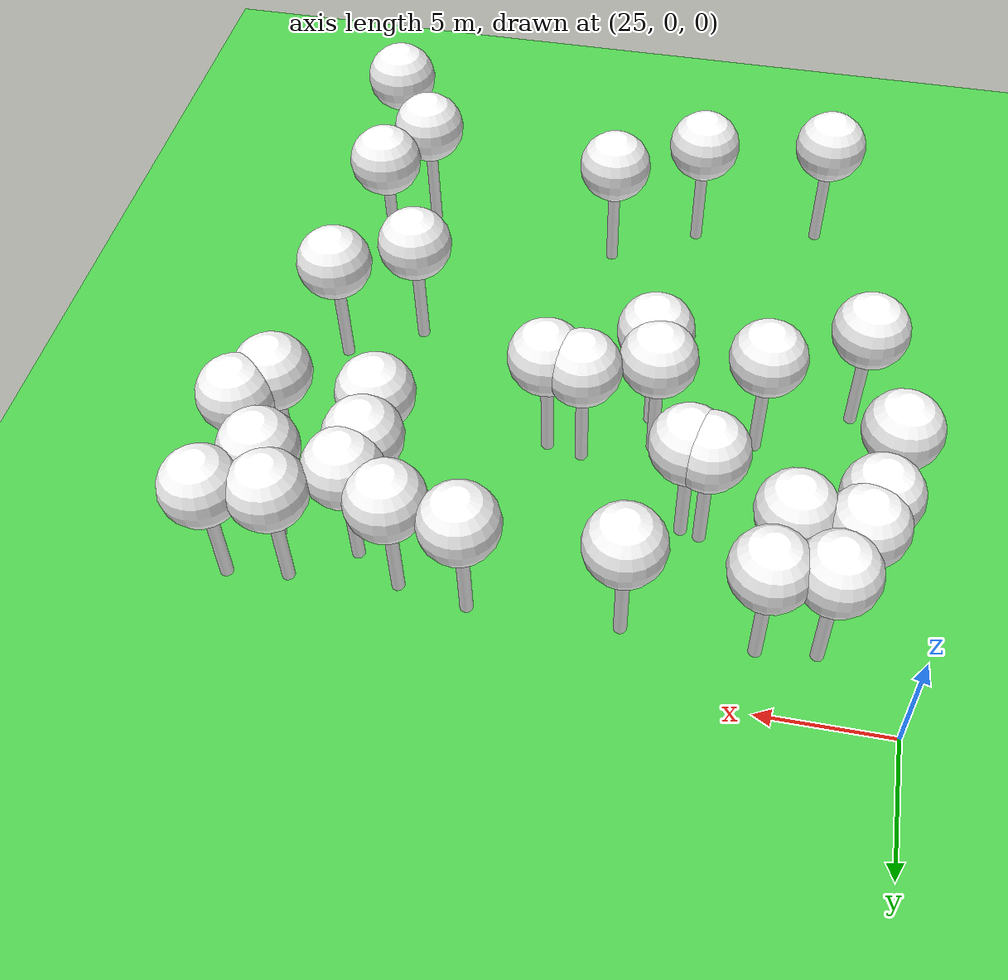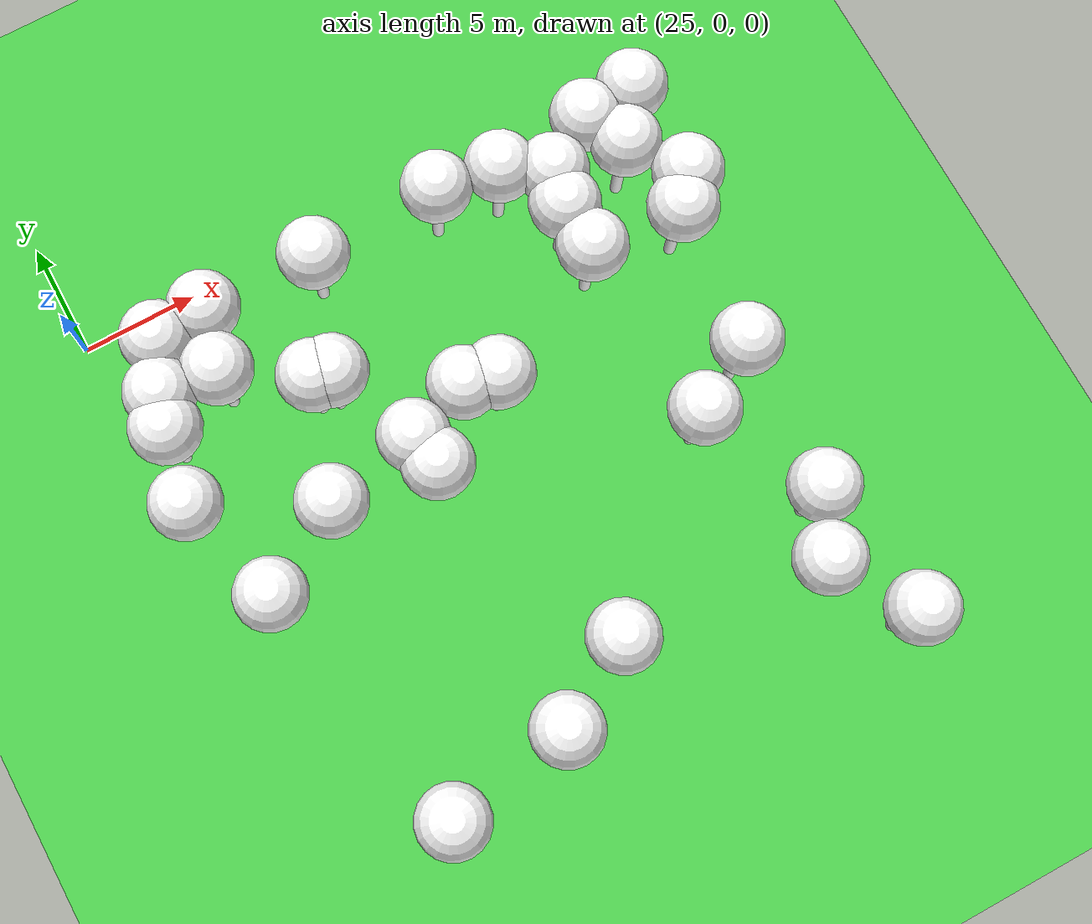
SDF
<sdf version="1.8">
 <world name="forest_world">
  <model name="tree_simple473">
   <static>1</static>
   <link name="link">
    <pose>0 0 0.1 0 -0 0</pose>
    <collision name="collision_trunk">
     <pose>0 0 2 0 -0 0</pose>
     <geometry><cylinder><radius>0.25</radius><length>4</length></cylinder></geometry>
    </collision>
    <collision name="collision_treetop">
     <pose>0 0 5.2 0 -0 0</pose>
     <geometry><sphere><radius>1.5</radius></sphere></geometry>
    </collision>
    <visual name="trunk_473">
     <pose>0 0 2 0 -0 0</pose>
     <geometry><cylinder><radius>0.25</radius><length>4</length></cylinder></geometry>
     <material>
      <ambient>0.5 0.5 0.5 1</ambient>
      <diffuse>1.0 1.0 1.0 1</diffuse>
      <specular>0.0 0.0 0.0 1</specular>
      <pbr>
       <metal>
        <albedo_map>file://textures/tree_simple_trunk.jpg</albedo_map>
        <metalness>0.0</metalness>
        <roughness>0.8</roughness>
       </metal>
      </pbr>
     </material>
    </visual>
    <visual name="treetop_473">
     <pose>0 0 5.2 0 -0 0</pose>
     <geometry><sphere><radius>1.5</radius></sphere></geometry>
     <material>
      <ambient>0.5 0.5 0.5 1</ambient>
      <diffuse>1.0 1.0 1.0 1</diffuse>
      <specular>0.0 0.0 0.0 1</specular>
      <pbr>
       <metal>
        <albedo_map>file://textures/tree_simple_treetop.jpg</albedo_map>
        <metalness>0.0</metalness>
        <roughness>0.9</roughness>
       </metal>
      </pbr>
     </material>
    </visual>
   </link>
   <pose>35.3600050295 -12.4568326028 0 0 -0 0</pose>
  </model>
  <model name="tree_simple468">
   <static>1</static>
   <link name="link">
    <pose>0 0 0.1 0 -0 0</pose>
    <collision name="collision_trunk">
     <pose>0 0 2 0 -0 0</pose>
     <geometry><cylinder><radius>0.25</radius><length>4</length></cylinder></geometry>
    </collision>
    <collision name="collision_treetop">
     <pose>0 0 5.2 0 -0 0</pose>
     <geometry><sphere><radius>1.5</radius></sphere></geometry>
    </collision>
    <visual name="trunk_468">
     <pose>0 0 2 0 -0 0</pose>
     <geometry><cylinder><radius>0.25</radius><length>4</length></cylinder></geometry>
     <material>
      <ambient>0.5 0.5 0.5 1</ambient>
      <diffuse>1.0 1.0 1.0 1</diffuse>
      <specular>0.0 0.0 0.0 1</specular>
      <pbr>
       <metal>
        <albedo_map>file://textures/tree_simple_trunk.jpg</albedo_map>
        <metalness>0.0</metalness>
        <roughness>0.8</roughness>
       </metal>
      </pbr>
     </material>
    </visual>
    <visual name="treetop_468">
     <pose>0 0 5.2 0 -0 0</pose>
     <geometry><sphere><radius>1.5</radius></sphere></geometry>
     <material>
      <ambient>0.5 0.5 0.5 1</ambient>
      <diffuse>1.0 1.0 1.0 1</diffuse>
      <specular>0.0 0.0 0.0 1</specular>
      <pbr>
       <metal>
        <albedo_map>file://textures/tree_simple_treetop.jpg</albedo_map>
        <metalness>0.0</metalness>
        <roughness>0.9</roughness>
       </metal>
      </pbr>
     </material>
    </visual>
   </link>
   <pose>33.4354348071 -7.20044037788 0 0 -0 0</pose>
  </model>
  <model name="tree_simple461">
   <static>1</static>
   <link name="link">
    <pose>0 0 0.1 0 -0 0</pose>
    <collision name="collision_trunk">
     <pose>0 0 2 0 -0 0</pose>
     <geometry><cylinder><radius>0.25</radius><length>4</length></cylinder></geometry>
    </collision>
    <collision name="collision_treetop">
     <pose>0 0 5.2 0 -0 0</pose>
     <geometry><sphere><radius>1.5</radius></sphere></geometry>
    </collision>
    <visual name="trunk_461">
     <pose>0 0 2 0 -0 0</pose>
     <geometry><cylinder><radius>0.25</radius><length>4</length></cylinder></geometry>
     <material>
      <ambient>0.5 0.5 0.5 1</ambient>
      <diffuse>1.0 1.0 1.0 1</diffuse>
      <specular>0.0 0.0 0.0 1</specular>
      <pbr>
       <metal>
        <albedo_map>file://textures/tree_simple_trunk.jpg</albedo_map>
        <metalness>0.0</metalness>
        <roughness>0.8</roughness>
       </metal>
      </pbr>
     </material>
    </visual>
    <visual name="treetop_461">
     <pose>0 0 5.2 0 -0 0</pose>
     <geometry><sphere><radius>1.5</radius></sphere></geometry>
     <material>
      <ambient>0.5 0.5 0.5 1</ambient>
      <diffuse>1.0 1.0 1.0 1</diffuse>
      <specular>0.0 0.0 0.0 1</specular>
      <pbr>
       <metal>
        <albedo_map>file://textures/tree_simple_treetop.jpg</albedo_map>
        <metalness>0.0</metalness>
        <roughness>0.9</roughness>
       </metal>
      </pbr>
     </material>
    </visual>
   </link>
   <pose>48.4583895912 -13.8275705943 0 0 -0 0</pose>
  </model>
  <model name="tree_simple429">
   <static>1</static>
   <link name="link">
    <pose>0 0 0.1 0 -0 0</pose>
    <collision name="collision_trunk">
     <pose>0 0 2 0 -0 0</pose>
     <geometry><cylinder><radius>0.25</radius><length>4</length></cylinder></geometry>
    </collision>
    <collision name="collision_treetop">
     <pose>0 0 5.2 0 -0 0</pose>
     <geometry><sphere><radius>1.5</radius></sphere></geometry>
    </collision>
    <visual name="trunk_429">
     <pose>0 0 2 0 -0 0</pose>
     <geometry><cylinder><radius>0.25</radius><length>4</length></cylinder></geometry>
     <material>
      <ambient>0.5 0.5 0.5 1</ambient>
      <diffuse>1.0 1.0 1.0 1</diffuse>
      <specular>0.0 0.0 0.0 1</specular>
      <pbr>
       <metal>
        <albedo_map>file://textures/tree_simple_trunk.jpg</albedo_map>
        <metalness>0.0</metalness>
        <roughness>0.8</roughness>
       </metal>
      </pbr>
     </material>
    </visual>
    <visual name="treetop_429">
     <pose>0 0 5.2 0 -0 0</pose>
     <geometry><sphere><radius>1.5</radius></sphere></geometry>
     <material>
      <ambient>0.5 0.5 0.5 1</ambient>
      <diffuse>1.0 1.0 1.0 1</diffuse>
      <specular>0.0 0.0 0.0 1</specular>
      <pbr>
       <metal>
        <albedo_map>file://textures/tree_simple_treetop.jpg</albedo_map>
        <metalness>0.0</metalness>
        <roughness>0.9</roughness>
       </metal>
      </pbr>
     </material>
    </visual>
   </link>
   <pose>29.4727075469 -24.7358283571 0 0 -0 0</pose>
  </model>
  <model name="tree_simple394">
   <static>1</static>
   <link name="link">
    <pose>0 0 0.1 0 -0 0</pose>
    <collision name="collision_trunk">
     <pose>0 0 2 0 -0 0</pose>
     <geometry><cylinder><radius>0.25</radius><length>4</length></cylinder></geometry>
    </collision>
    <collision name="collision_treetop">
     <pose>0 0 5.2 0 -0 0</pose>
     <geometry><sphere><radius>1.5</radius></sphere></geometry>
    </collision>
    <visual name="trunk_394">
     <pose>0 0 2 0 -0 0</pose>
     <geometry><cylinder><radius>0.25</radius><length>4</length></cylinder></geometry>
     <material>
      <ambient>0.5 0.5 0.5 1</ambient>
      <diffuse>1.0 1.0 1.0 1</diffuse>
      <specular>0.0 0.0 0.0 1</specular>
      <pbr>
       <metal>
        <albedo_map>file://textures/tree_simple_trunk.jpg</albedo_map>
        <metalness>0.0</metalness>
        <roughness>0.8</roughness>
       </metal>
      </pbr>
     </material>
    </visual>
    <visual name="treetop_394">
     <pose>0 0 5.2 0 -0 0</pose>
     <geometry><sphere><radius>1.5</radius></sphere></geometry>
     <material>
      <ambient>0.5 0.5 0.5 1</ambient>
      <diffuse>1.0 1.0 1.0 1</diffuse>
      <specular>0.0 0.0 0.0 1</specular>
      <pbr>
       <metal>
        <albedo_map>file://textures/tree_simple_treetop.jpg</albedo_map>
        <metalness>0.0</metalness>
        <roughness>0.9</roughness>
       </metal>
      </pbr>
     </material>
    </visual>
   </link>
   <pose>26.6658652991 -6.19294115589 0 0 -0 0</pose>
  </model>
  <model name="tree_simple391">
   <static>1</static>
   <link name="link">
    <pose>0 0 0.1 0 -0 0</pose>
    <collision name="collision_trunk">
     <pose>0 0 2 0 -0 0</pose>
     <geometry><cylinder><radius>0.25</radius><length>4</length></cylinder></geometry>
    </collision>
    <collision name="collision_treetop">
     <pose>0 0 5.2 0 -0 0</pose>
     <geometry><sphere><radius>1.5</radius></sphere></geometry>
    </collision>
    <visual name="trunk_391">
     <pose>0 0 2 0 -0 0</pose>
     <geometry><cylinder><radius>0.25</radius><length>4</length></cylinder></geometry>
     <material>
      <ambient>0.5 0.5 0.5 1</ambient>
      <diffuse>1.0 1.0 1.0 1</diffuse>
      <specular>0.0 0.0 0.0 1</specular>
      <pbr>
       <metal>
        <albedo_map>file://textures/tree_simple_trunk.jpg</albedo_map>
        <metalness>0.0</metalness>
        <roughness>0.8</roughness>
       </metal>
      </pbr>
     </material>
    </visual>
    <visual name="treetop_391">
     <pose>0 0 5.2 0 -0 0</pose>
     <geometry><sphere><radius>1.5</radius></sphere></geometry>
     <material>
      <ambient>0.5 0.5 0.5 1</ambient>
      <diffuse>1.0 1.0 1.0 1</diffuse>
      <specular>0.0 0.0 0.0 1</specular>
      <pbr>
       <metal>
        <albedo_map>file://textures/tree_simple_treetop.jpg</albedo_map>
        <metalness>0.0</metalness>
        <roughness>0.9</roughness>
       </metal>
      </pbr>
     </material>
    </visual>
   </link>
   <pose>35.0521422103 -11.0450283788 0 0 -0 0</pose>
  </model>
  <model name="tree_simple390">
   <static>1</static>
   <link name="link">
    <pose>0 0 0.1 0 -0 0</pose>
    <collision name="collision_trunk">
     <pose>0 0 2 0 -0 0</pose>
     <geometry><cylinder><radius>0.25</radius><length>4</length></cylinder></geometry>
    </collision>
    <collision name="collision_treetop">
     <pose>0 0 5.2 0 -0 0</pose>
     <geometry><sphere><radius>1.5</radius></sphere></geometry>
    </collision>
    <visual name="trunk_390">
     <pose>0 0 2 0 -0 0</pose>
     <geometry><cylinder><radius>0.25</radius><length>4</length></cylinder></geometry>
     <material>
      <ambient>0.5 0.5 0.5 1</ambient>
      <diffuse>1.0 1.0 1.0 1</diffuse>
      <specular>0.0 0.0 0.0 1</specular>
      <pbr>
       <metal>
        <albedo_map>file://textures/tree_simple_trunk.jpg</albedo_map>
        <metalness>0.0</metalness>
        <roughness>0.8</roughness>
       </metal>
      </pbr>
     </material>
    </visual>
    <visual name="treetop_390">
     <pose>0 0 5.2 0 -0 0</pose>
     <geometry><sphere><radius>1.5</radius></sphere></geometry>
     <material>
      <ambient>0.5 0.5 0.5 1</ambient>
      <diffuse>1.0 1.0 1.0 1</diffuse>
      <specular>0.0 0.0 0.0 1</specular>
      <pbr>
       <metal>
        <albedo_map>file://textures/tree_simple_treetop.jpg</albedo_map>
        <metalness>0.0</metalness>
        <roughness>0.9</roughness>
       </metal>
      </pbr>
     </material>
    </visual>
   </link>
   <pose>34.8279648661 -23.7978261523 0 0 -0 0</pose>
  </model>
  <model name="tree_simple385">
   <static>1</static>
   <link name="link">
    <pose>0 0 0.1 0 -0 0</pose>
    <collision name="collision_trunk">
     <pose>0 0 2 0 -0 0</pose>
     <geometry><cylinder><radius>0.25</radius><length>4</length></cylinder></geometry>
    </collision>
    <collision name="collision_treetop">
     <pose>0 0 5.2 0 -0 0</pose>
     <geometry><sphere><radius>1.5</radius></sphere></geometry>
    </collision>
    <visual name="trunk_385">
     <pose>0 0 2 0 -0 0</pose>
     <geometry><cylinder><radius>0.25</radius><length>4</length></cylinder></geometry>
     <material>
      <ambient>0.5 0.5 0.5 1</ambient>
      <diffuse>1.0 1.0 1.0 1</diffuse>
      <specular>0.0 0.0 0.0 1</specular>
      <pbr>
       <metal>
        <albedo_map>file://textures/tree_simple_trunk.jpg</albedo_map>
        <metalness>0.0</metalness>
        <roughness>0.8</roughness>
       </metal>
      </pbr>
     </material>
    </visual>
    <visual name="treetop_385">
     <pose>0 0 5.2 0 -0 0</pose>
     <geometry><sphere><radius>1.5</radius></sphere></geometry>
     <material>
      <ambient>0.5 0.5 0.5 1</ambient>
      <diffuse>1.0 1.0 1.0 1</diffuse>
      <specular>0.0 0.0 0.0 1</specular>
      <pbr>
       <metal>
        <albedo_map>file://textures/tree_simple_treetop.jpg</albedo_map>
        <metalness>0.0</metalness>
        <roughness>0.9</roughness>
       </metal>
      </pbr>
     </material>
    </visual>
   </link>
   <pose>32.6946046779 -7.01468529962 0 0 -0 0</pose>
  </model>
  <model name="tree_simple380">
   <static>1</static>
   <link name="link">
    <pose>0 0 0.1 0 -0 0</pose>
    <collision name="collision_trunk">
     <pose>0 0 2 0 -0 0</pose>
     <geometry><cylinder><radius>0.25</radius><length>4</length></cylinder></geometry>
    </collision>
    <collision name="collision_treetop">
     <pose>0 0 5.2 0 -0 0</pose>
     <geometry><sphere><radius>1.5</radius></sphere></geometry>
    </collision>
    <visual name="trunk_380">
     <pose>0 0 2 0 -0 0</pose>
     <geometry><cylinder><radius>0.25</radius><length>4</length></cylinder></geometry>
     <material>
      <ambient>0.5 0.5 0.5 1</ambient>
      <diffuse>1.0 1.0 1.0 1</diffuse>
      <specular>0.0 0.0 0.0 1</specular>
      <pbr>
       <metal>
        <albedo_map>file://textures/tree_simple_trunk.jpg</albedo_map>
        <metalness>0.0</metalness>
        <roughness>0.8</roughness>
       </metal>
      </pbr>
     </material>
    </visual>
    <visual name="treetop_380">
     <pose>0 0 5.2 0 -0 0</pose>
     <geometry><sphere><radius>1.5</radius></sphere></geometry>
     <material>
      <ambient>0.5 0.5 0.5 1</ambient>
      <diffuse>1.0 1.0 1.0 1</diffuse>
      <specular>0.0 0.0 0.0 1</specular>
      <pbr>
       <metal>
        <albedo_map>file://textures/tree_simple_treetop.jpg</albedo_map>
        <metalness>0.0</metalness>
        <roughness>0.9</roughness>
       </metal>
      </pbr>
     </material>
    </visual>
   </link>
   <pose>49.0222625073 -7.79616728684 0 0 -0 0</pose>
  </model>
  <model name="tree_simple374">
   <static>1</static>
   <link name="link">
    <pose>0 0 0.1 0 -0 0</pose>
    <collision name="collision_trunk">
     <pose>0 0 2 0 -0 0</pose>
     <geometry><cylinder><radius>0.25</radius><length>4</length></cylinder></geometry>
    </collision>
    <collision name="collision_treetop">
     <pose>0 0 5.2 0 -0 0</pose>
     <geometry><sphere><radius>1.5</radius></sphere></geometry>
    </collision>
    <visual name="trunk_374">
     <pose>0 0 2 0 -0 0</pose>
     <geometry><cylinder><radius>0.25</radius><length>4</length></cylinder></geometry>
     <material>
      <ambient>0.5 0.5 0.5 1</ambient>
      <diffuse>1.0 1.0 1.0 1</diffuse>
      <specular>0.0 0.0 0.0 1</specular>
      <pbr>
       <metal>
        <albedo_map>file://textures/tree_simple_trunk.jpg</albedo_map>
        <metalness>0.0</metalness>
        <roughness>0.8</roughness>
       </metal>
      </pbr>
     </material>
    </visual>
    <visual name="treetop_374">
     <pose>0 0 5.2 0 -0 0</pose>
     <geometry><sphere><radius>1.5</radius></sphere></geometry>
     <material>
      <ambient>0.5 0.5 0.5 1</ambient>
      <diffuse>1.0 1.0 1.0 1</diffuse>
      <specular>0.0 0.0 0.0 1</specular>
      <pbr>
       <metal>
        <albedo_map>file://textures/tree_simple_treetop.jpg</albedo_map>
        <metalness>0.0</metalness>
        <roughness>0.9</roughness>
       </metal>
      </pbr>
     </material>
    </visual>
   </link>
   <pose>45.5880490305 -15.4743351493 0 0 -0 0</pose>
  </model>
  <model name="tree_simple352">
   <static>1</static>
   <link name="link">
    <pose>0 0 0.1 0 -0 0</pose>
    <collision name="collision_trunk">
     <pose>0 0 2 0 -0 0</pose>
     <geometry><cylinder><radius>0.25</radius><length>4</length></cylinder></geometry>
    </collision>
    <collision name="collision_treetop">
     <pose>0 0 5.2 0 -0 0</pose>
     <geometry><sphere><radius>1.5</radius></sphere></geometry>
    </collision>
    <visual name="trunk_352">
     <pose>0 0 2 0 -0 0</pose>
     <geometry><cylinder><radius>0.25</radius><length>4</length></cylinder></geometry>
     <material>
      <ambient>0.5 0.5 0.5 1</ambient>
      <diffuse>1.0 1.0 1.0 1</diffuse>
      <specular>0.0 0.0 0.0 1</specular>
      <pbr>
       <metal>
        <albedo_map>file://textures/tree_simple_trunk.jpg</albedo_map>
        <metalness>0.0</metalness>
        <roughness>0.8</roughness>
       </metal>
      </pbr>
     </material>
    </visual>
    <visual name="treetop_352">
     <pose>0 0 5.2 0 -0 0</pose>
     <geometry><sphere><radius>1.5</radius></sphere></geometry>
     <material>
      <ambient>0.5 0.5 0.5 1</ambient>
      <diffuse>1.0 1.0 1.0 1</diffuse>
      <specular>0.0 0.0 0.0 1</specular>
      <pbr>
       <metal>
        <albedo_map>file://textures/tree_simple_treetop.jpg</albedo_map>
        <metalness>0.0</metalness>
        <roughness>0.9</roughness>
       </metal>
      </pbr>
     </material>
    </visual>
   </link>
   <pose>37.7714253308 -10.085576638 0 0 -0 0</pose>
  </model>
  <model name="tree_simple301">
   <static>1</static>
   <link name="link">
    <pose>0 0 0.1 0 -0 0</pose>
    <collision name="collision_trunk">
     <pose>0 0 2 0 -0 0</pose>
     <geometry><cylinder><radius>0.25</radius><length>4</length></cylinder></geometry>
    </collision>
    <collision name="collision_treetop">
     <pose>0 0 5.2 0 -0 0</pose>
     <geometry><sphere><radius>1.5</radius></sphere></geometry>
    </collision>
    <visual name="trunk_301">
     <pose>0 0 2 0 -0 0</pose>
     <geometry><cylinder><radius>0.25</radius><length>4</length></cylinder></geometry>
     <material>
      <ambient>0.5 0.5 0.5 1</ambient>
      <diffuse>1.0 1.0 1.0 1</diffuse>
      <specular>0.0 0.0 0.0 1</specular>
      <pbr>
       <metal>
        <albedo_map>file://textures/tree_simple_trunk.jpg</albedo_map>
        <metalness>0.0</metalness>
        <roughness>0.8</roughness>
       </metal>
      </pbr>
     </material>
    </visual>
    <visual name="treetop_301">
     <pose>0 0 5.2 0 -0 0</pose>
     <geometry><sphere><radius>1.5</radius></sphere></geometry>
     <material>
      <ambient>0.5 0.5 0.5 1</ambient>
      <diffuse>1.0 1.0 1.0 1</diffuse>
      <specular>0.0 0.0 0.0 1</specular>
      <pbr>
       <metal>
        <albedo_map>file://textures/tree_simple_treetop.jpg</albedo_map>
        <metalness>0.0</metalness>
        <roughness>0.9</roughness>
       </metal>
      </pbr>
     </material>
    </visual>
   </link>
   <pose>27.965012063 -2.69695305694 0 0 -0 0</pose>
  </model>
  <model name="tree_simple290">
   <static>1</static>
   <link name="link">
    <pose>0 0 0.1 0 -0 0</pose>
    <collision name="collision_trunk">
     <pose>0 0 2 0 -0 0</pose>
     <geometry><cylinder><radius>0.25</radius><length>4</length></cylinder></geometry>
    </collision>
    <collision name="collision_treetop">
     <pose>0 0 5.2 0 -0 0</pose>
     <geometry><sphere><radius>1.5</radius></sphere></geometry>
    </collision>
    <visual name="trunk_290">
     <pose>0 0 2 0 -0 0</pose>
     <geometry><cylinder><radius>0.25</radius><length>4</length></cylinder></geometry>
     <material>
      <ambient>0.5 0.5 0.5 1</ambient>
      <diffuse>1.0 1.0 1.0 1</diffuse>
      <specular>0.0 0.0 0.0 1</specular>
      <pbr>
       <metal>
        <albedo_map>file://textures/tree_simple_trunk.jpg</albedo_map>
        <metalness>0.0</metalness>
        <roughness>0.8</roughness>
       </metal>
      </pbr>
     </material>
    </visual>
    <visual name="treetop_290">
     <pose>0 0 5.2 0 -0 0</pose>
     <geometry><sphere><radius>1.5</radius></sphere></geometry>
     <material>
      <ambient>0.5 0.5 0.5 1</ambient>
      <diffuse>1.0 1.0 1.0 1</diffuse>
      <specular>0.0 0.0 0.0 1</specular>
      <pbr>
       <metal>
        <albedo_map>file://textures/tree_simple_treetop.jpg</albedo_map>
        <metalness>0.0</metalness>
        <roughness>0.9</roughness>
       </metal>
      </pbr>
     </material>
    </visual>
   </link>
   <pose>27.3398552582 -13.9618363734 0 0 -0 0</pose>
  </model>
  <model name="tree_simple288">
   <static>1</static>
   <link name="link">
    <pose>0 0 0.1 0 -0 0</pose>
    <collision name="collision_trunk">
     <pose>0 0 2 0 -0 0</pose>
     <geometry><cylinder><radius>0.25</radius><length>4</length></cylinder></geometry>
    </collision>
    <collision name="collision_treetop">
     <pose>0 0 5.2 0 -0 0</pose>
     <geometry><sphere><radius>1.5</radius></sphere></geometry>
    </collision>
    <visual name="trunk_288">
     <pose>0 0 2 0 -0 0</pose>
     <geometry><cylinder><radius>0.25</radius><length>4</length></cylinder></geometry>
     <material>
      <ambient>0.5 0.5 0.5 1</ambient>
      <diffuse>1.0 1.0 1.0 1</diffuse>
      <specular>0.0 0.0 0.0 1</specular>
      <pbr>
       <metal>
        <albedo_map>file://textures/tree_simple_trunk.jpg</albedo_map>
        <metalness>0.0</metalness>
        <roughness>0.8</roughness>
       </metal>
      </pbr>
     </material>
    </visual>
    <visual name="treetop_288">
     <pose>0 0 5.2 0 -0 0</pose>
     <geometry><sphere><radius>1.5</radius></sphere></geometry>
     <material>
      <ambient>0.5 0.5 0.5 1</ambient>
      <diffuse>1.0 1.0 1.0 1</diffuse>
      <specular>0.0 0.0 0.0 1</specular>
      <pbr>
       <metal>
        <albedo_map>file://textures/tree_simple_treetop.jpg</albedo_map>
        <metalness>0.0</metalness>
        <roughness>0.9</roughness>
       </metal>
      </pbr>
     </material>
    </visual>
   </link>
   <pose>27.0972467775 -4.81040951666 0 0 -0 0</pose>
  </model>
  <model name="tree_simple278">
   <static>1</static>
   <link name="link">
    <pose>0 0 0.1 0 -0 0</pose>
    <collision name="collision_trunk">
     <pose>0 0 2 0 -0 0</pose>
     <geometry><cylinder><radius>0.25</radius><length>4</length></cylinder></geometry>
    </collision>
    <collision name="collision_treetop">
     <pose>0 0 5.2 0 -0 0</pose>
     <geometry><sphere><radius>1.5</radius></sphere></geometry>
    </collision>
    <visual name="trunk_278">
     <pose>0 0 2 0 -0 0</pose>
     <geometry><cylinder><radius>0.25</radius><length>4</length></cylinder></geometry>
     <material>
      <ambient>0.5 0.5 0.5 1</ambient>
      <diffuse>1.0 1.0 1.0 1</diffuse>
      <specular>0.0 0.0 0.0 1</specular>
      <pbr>
       <metal>
        <albedo_map>file://textures/tree_simple_trunk.jpg</albedo_map>
        <metalness>0.0</metalness>
        <roughness>0.8</roughness>
       </metal>
      </pbr>
     </material>
    </visual>
    <visual name="treetop_278">
     <pose>0 0 5.2 0 -0 0</pose>
     <geometry><sphere><radius>1.5</radius></sphere></geometry>
     <material>
      <ambient>0.5 0.5 0.5 1</ambient>
      <diffuse>1.0 1.0 1.0 1</diffuse>
      <specular>0.0 0.0 0.0 1</specular>
      <pbr>
       <metal>
        <albedo_map>file://textures/tree_simple_treetop.jpg</albedo_map>
        <metalness>0.0</metalness>
        <roughness>0.9</roughness>
       </metal>
      </pbr>
     </material>
    </visual>
   </link>
   <pose>38.4116061074 -21.7404675264 0 0 -0 0</pose>
  </model>
  <model name="tree_simple267">
   <static>1</static>
   <link name="link">
    <pose>0 0 0.1 0 -0 0</pose>
    <collision name="collision_trunk">
     <pose>0 0 2 0 -0 0</pose>
     <geometry><cylinder><radius>0.25</radius><length>4</length></cylinder></geometry>
    </collision>
    <collision name="collision_treetop">
     <pose>0 0 5.2 0 -0 0</pose>
     <geometry><sphere><radius>1.5</radius></sphere></geometry>
    </collision>
    <visual name="trunk_267">
     <pose>0 0 2 0 -0 0</pose>
     <geometry><cylinder><radius>0.25</radius><length>4</length></cylinder></geometry>
     <material>
      <ambient>0.5 0.5 0.5 1</ambient>
      <diffuse>1.0 1.0 1.0 1</diffuse>
      <specular>0.0 0.0 0.0 1</specular>
      <pbr>
       <metal>
        <albedo_map>file://textures/tree_simple_trunk.jpg</albedo_map>
        <metalness>0.0</metalness>
        <roughness>0.8</roughness>
       </metal>
      </pbr>
     </material>
    </visual>
    <visual name="treetop_267">
     <pose>0 0 5.2 0 -0 0</pose>
     <geometry><sphere><radius>1.5</radius></sphere></geometry>
     <material>
      <ambient>0.5 0.5 0.5 1</ambient>
      <diffuse>1.0 1.0 1.0 1</diffuse>
      <specular>0.0 0.0 0.0 1</specular>
      <pbr>
       <metal>
        <albedo_map>file://textures/tree_simple_treetop.jpg</albedo_map>
        <metalness>0.0</metalness>
        <roughness>0.9</roughness>
       </metal>
      </pbr>
     </material>
    </visual>
   </link>
   <pose>26.0311147771 -9.256788114 0 0 -0 0</pose>
  </model>
  <model name="tree_simple244">
   <static>1</static>
   <link name="link">
    <pose>0 0 0.1 0 -0 0</pose>
    <collision name="collision_trunk">
     <pose>0 0 2 0 -0 0</pose>
     <geometry><cylinder><radius>0.25</radius><length>4</length></cylinder></geometry>
    </collision>
    <collision name="collision_treetop">
     <pose>0 0 5.2 0 -0 0</pose>
     <geometry><sphere><radius>1.5</radius></sphere></geometry>
    </collision>
    <visual name="trunk_244">
     <pose>0 0 2 0 -0 0</pose>
     <geometry><cylinder><radius>0.25</radius><length>4</length></cylinder></geometry>
     <material>
      <ambient>0.5 0.5 0.5 1</ambient>
      <diffuse>1.0 1.0 1.0 1</diffuse>
      <specular>0.0 0.0 0.0 1</specular>
      <pbr>
       <metal>
        <albedo_map>file://textures/tree_simple_trunk.jpg</albedo_map>
        <metalness>0.0</metalness>
        <roughness>0.8</roughness>
       </metal>
      </pbr>
     </material>
    </visual>
    <visual name="treetop_244">
     <pose>0 0 5.2 0 -0 0</pose>
     <geometry><sphere><radius>1.5</radius></sphere></geometry>
     <material>
      <ambient>0.5 0.5 0.5 1</ambient>
      <diffuse>1.0 1.0 1.0 1</diffuse>
      <specular>0.0 0.0 0.0 1</specular>
      <pbr>
       <metal>
        <albedo_map>file://textures/tree_simple_treetop.jpg</albedo_map>
        <metalness>0.0</metalness>
        <roughness>0.9</roughness>
       </metal>
      </pbr>
     </material>
    </visual>
   </link>
   <pose>45.1720023685 -3.9344800414 0 0 -0 0</pose>
  </model>
  <model name="tree_simple243">
   <static>1</static>
   <link name="link">
    <pose>0 0 0.1 0 -0 0</pose>
    <collision name="collision_trunk">
     <pose>0 0 2 0 -0 0</pose>
     <geometry><cylinder><radius>0.25</radius><length>4</length></cylinder></geometry>
    </collision>
    <collision name="collision_treetop">
     <pose>0 0 5.2 0 -0 0</pose>
     <geometry><sphere><radius>1.5</radius></sphere></geometry>
    </collision>
    <visual name="trunk_243">
     <pose>0 0 2 0 -0 0</pose>
     <geometry><cylinder><radius>0.25</radius><length>4</length></cylinder></geometry>
     <material>
      <ambient>0.5 0.5 0.5 1</ambient>
      <diffuse>1.0 1.0 1.0 1</diffuse>
      <specular>0.0 0.0 0.0 1</specular>
      <pbr>
       <metal>
        <albedo_map>file://textures/tree_simple_trunk.jpg</albedo_map>
        <metalness>0.0</metalness>
        <roughness>0.8</roughness>
       </metal>
      </pbr>
     </material>
    </visual>
    <visual name="treetop_243">
     <pose>0 0 5.2 0 -0 0</pose>
     <geometry><sphere><radius>1.5</radius></sphere></geometry>
     <material>
      <ambient>0.5 0.5 0.5 1</ambient>
      <diffuse>1.0 1.0 1.0 1</diffuse>
      <specular>0.0 0.0 0.0 1</specular>
      <pbr>
       <metal>
        <albedo_map>file://textures/tree_simple_treetop.jpg</albedo_map>
        <metalness>0.0</metalness>
        <roughness>0.9</roughness>
       </metal>
      </pbr>
     </material>
    </visual>
   </link>
   <pose>48.9656449897 -26.1871742827 0 0 -0 0</pose>
  </model>
  <model name="tree_simple235">
   <static>1</static>
   <link name="link">
    <pose>0 0 0.1 0 -0 0</pose>
    <collision name="collision_trunk">
     <pose>0 0 2 0 -0 0</pose>
     <geometry><cylinder><radius>0.25</radius><length>4</length></cylinder></geometry>
    </collision>
    <collision name="collision_treetop">
     <pose>0 0 5.2 0 -0 0</pose>
     <geometry><sphere><radius>1.5</radius></sphere></geometry>
    </collision>
    <visual name="trunk_235">
     <pose>0 0 2 0 -0 0</pose>
     <geometry><cylinder><radius>0.25</radius><length>4</length></cylinder></geometry>
     <material>
      <ambient>0.5 0.5 0.5 1</ambient>
      <diffuse>1.0 1.0 1.0 1</diffuse>
      <specular>0.0 0.0 0.0 1</specular>
      <pbr>
       <metal>
        <albedo_map>file://textures/tree_simple_trunk.jpg</albedo_map>
        <metalness>0.0</metalness>
        <roughness>0.8</roughness>
       </metal>
      </pbr>
     </material>
    </visual>
    <visual name="treetop_235">
     <pose>0 0 5.2 0 -0 0</pose>
     <geometry><sphere><radius>1.5</radius></sphere></geometry>
     <material>
      <ambient>0.5 0.5 0.5 1</ambient>
      <diffuse>1.0 1.0 1.0 1</diffuse>
      <specular>0.0 0.0 0.0 1</specular>
      <pbr>
       <metal>
        <albedo_map>file://textures/tree_simple_treetop.jpg</albedo_map>
        <metalness>0.0</metalness>
        <roughness>0.9</roughness>
       </metal>
      </pbr>
     </material>
    </visual>
   </link>
   <pose>47.4649473564 -2.51877980815 0 0 -0 0</pose>
  </model>
  <model name="tree_simple217">
   <static>1</static>
   <link name="link">
    <pose>0 0 0.1 0 -0 0</pose>
    <collision name="collision_trunk">
     <pose>0 0 2 0 -0 0</pose>
     <geometry><cylinder><radius>0.25</radius><length>4</length></cylinder></geometry>
    </collision>
    <collision name="collision_treetop">
     <pose>0 0 5.2 0 -0 0</pose>
     <geometry><sphere><radius>1.5</radius></sphere></geometry>
    </collision>
    <visual name="trunk_217">
     <pose>0 0 2 0 -0 0</pose>
     <geometry><cylinder><radius>0.25</radius><length>4</length></cylinder></geometry>
     <material>
      <ambient>0.5 0.5 0.5 1</ambient>
      <diffuse>1.0 1.0 1.0 1</diffuse>
      <specular>0.0 0.0 0.0 1</specular>
      <pbr>
       <metal>
        <albedo_map>file://textures/tree_simple_trunk.jpg</albedo_map>
        <metalness>0.0</metalness>
        <roughness>0.8</roughness>
       </metal>
      </pbr>
     </material>
    </visual>
    <visual name="treetop_217">
     <pose>0 0 5.2 0 -0 0</pose>
     <geometry><sphere><radius>1.5</radius></sphere></geometry>
     <material>
      <ambient>0.5 0.5 0.5 1</ambient>
      <diffuse>1.0 1.0 1.0 1</diffuse>
      <specular>0.0 0.0 0.0 1</specular>
      <pbr>
       <metal>
        <albedo_map>file://textures/tree_simple_treetop.jpg</albedo_map>
        <metalness>0.0</metalness>
        <roughness>0.9</roughness>
       </metal>
      </pbr>
     </material>
    </visual>
   </link>
   <pose>49.7701486167 -2.25839681325 0 0 -0 0</pose>
  </model>
  <model name="tree_simple210">
   <static>1</static>
   <link name="link">
    <pose>0 0 0.1 0 -0 0</pose>
    <collision name="collision_trunk">
     <pose>0 0 2 0 -0 0</pose>
     <geometry><cylinder><radius>0.25</radius><length>4</length></cylinder></geometry>
    </collision>
    <collision name="collision_treetop">
     <pose>0 0 5.2 0 -0 0</pose>
     <geometry><sphere><radius>1.5</radius></sphere></geometry>
    </collision>
    <visual name="trunk_210">
     <pose>0 0 2 0 -0 0</pose>
     <geometry><cylinder><radius>0.25</radius><length>4</length></cylinder></geometry>
     <material>
      <ambient>0.5 0.5 0.5 1</ambient>
      <diffuse>1.0 1.0 1.0 1</diffuse>
      <specular>0.0 0.0 0.0 1</specular>
      <pbr>
       <metal>
        <albedo_map>file://textures/tree_simple_trunk.jpg</albedo_map>
        <metalness>0.0</metalness>
        <roughness>0.8</roughness>
       </metal>
      </pbr>
     </material>
    </visual>
    <visual name="treetop_210">
     <pose>0 0 5.2 0 -0 0</pose>
     <geometry><sphere><radius>1.5</radius></sphere></geometry>
     <material>
      <ambient>0.5 0.5 0.5 1</ambient>
      <diffuse>1.0 1.0 1.0 1</diffuse>
      <specular>0.0 0.0 0.0 1</specular>
      <pbr>
       <metal>
        <albedo_map>file://textures/tree_simple_treetop.jpg</albedo_map>
        <metalness>0.0</metalness>
        <roughness>0.9</roughness>
       </metal>
      </pbr>
     </material>
    </visual>
   </link>
   <pose>49.9611404215 -6.54237160605 0 0 -0 0</pose>
  </model>
  <model name="tree_simple206">
   <static>1</static>
   <link name="link">
    <pose>0 0 0.1 0 -0 0</pose>
    <collision name="collision_trunk">
     <pose>0 0 2 0 -0 0</pose>
     <geometry><cylinder><radius>0.25</radius><length>4</length></cylinder></geometry>
    </collision>
    <collision name="collision_treetop">
     <pose>0 0 5.2 0 -0 0</pose>
     <geometry><sphere><radius>1.5</radius></sphere></geometry>
    </collision>
    <visual name="trunk_206">
     <pose>0 0 2 0 -0 0</pose>
     <geometry><cylinder><radius>0.25</radius><length>4</length></cylinder></geometry>
     <material>
      <ambient>0.5 0.5 0.5 1</ambient>
      <diffuse>1.0 1.0 1.0 1</diffuse>
      <specular>0.0 0.0 0.0 1</specular>
      <pbr>
       <metal>
        <albedo_map>file://textures/tree_simple_trunk.jpg</albedo_map>
        <metalness>0.0</metalness>
        <roughness>0.8</roughness>
       </metal>
      </pbr>
     </material>
    </visual>
    <visual name="treetop_206">
     <pose>0 0 5.2 0 -0 0</pose>
     <geometry><sphere><radius>1.5</radius></sphere></geometry>
     <material>
      <ambient>0.5 0.5 0.5 1</ambient>
      <diffuse>1.0 1.0 1.0 1</diffuse>
      <specular>0.0 0.0 0.0 1</specular>
      <pbr>
       <metal>
        <albedo_map>file://textures/tree_simple_treetop.jpg</albedo_map>
        <metalness>0.0</metalness>
        <roughness>0.9</roughness>
       </metal>
      </pbr>
     </material>
    </visual>
   </link>
   <pose>46.8540816615 -22.8682209639 0 0 -0 0</pose>
  </model>
  <model name="tree_simple204">
   <static>1</static>
   <link name="link">
    <pose>0 0 0.1 0 -0 0</pose>
    <collision name="collision_trunk">
     <pose>0 0 2 0 -0 0</pose>
     <geometry><cylinder><radius>0.25</radius><length>4</length></cylinder></geometry>
    </collision>
    <collision name="collision_treetop">
     <pose>0 0 5.2 0 -0 0</pose>
     <geometry><sphere><radius>1.5</radius></sphere></geometry>
    </collision>
    <visual name="trunk_204">
     <pose>0 0 2 0 -0 0</pose>
     <geometry><cylinder><radius>0.25</radius><length>4</length></cylinder></geometry>
     <material>
      <ambient>0.5 0.5 0.5 1</ambient>
      <diffuse>1.0 1.0 1.0 1</diffuse>
      <specular>0.0 0.0 0.0 1</specular>
      <pbr>
       <metal>
        <albedo_map>file://textures/tree_simple_trunk.jpg</albedo_map>
        <metalness>0.0</metalness>
        <roughness>0.8</roughness>
       </metal>
      </pbr>
     </material>
    </visual>
    <visual name="treetop_204">
     <pose>0 0 5.2 0 -0 0</pose>
     <geometry><sphere><radius>1.5</radius></sphere></geometry>
     <material>
      <ambient>0.5 0.5 0.5 1</ambient>
      <diffuse>1.0 1.0 1.0 1</diffuse>
      <specular>0.0 0.0 0.0 1</specular>
      <pbr>
       <metal>
        <albedo_map>file://textures/tree_simple_treetop.jpg</albedo_map>
        <metalness>0.0</metalness>
        <roughness>0.9</roughness>
       </metal>
      </pbr>
     </material>
    </visual>
   </link>
   <pose>40.6572947186 -2.37352514754 0 0 -0 0</pose>
  </model>
  <model name="tree_simple203">
   <static>1</static>
   <link name="link">
    <pose>0 0 0.1 0 -0 0</pose>
    <collision name="collision_trunk">
     <pose>0 0 2 0 -0 0</pose>
     <geometry><cylinder><radius>0.25</radius><length>4</length></cylinder></geometry>
    </collision>
    <collision name="collision_treetop">
     <pose>0 0 5.2 0 -0 0</pose>
     <geometry><sphere><radius>1.5</radius></sphere></geometry>
    </collision>
    <visual name="trunk_203">
     <pose>0 0 2 0 -0 0</pose>
     <geometry><cylinder><radius>0.25</radius><length>4</length></cylinder></geometry>
     <material>
      <ambient>0.5 0.5 0.5 1</ambient>
      <diffuse>1.0 1.0 1.0 1</diffuse>
      <specular>0.0 0.0 0.0 1</specular>
      <pbr>
       <metal>
        <albedo_map>file://textures/tree_simple_trunk.jpg</albedo_map>
        <metalness>0.0</metalness>
        <roughness>0.8</roughness>
       </metal>
      </pbr>
     </material>
    </visual>
    <visual name="treetop_203">
     <pose>0 0 5.2 0 -0 0</pose>
     <geometry><sphere><radius>1.5</radius></sphere></geometry>
     <material>
      <ambient>0.5 0.5 0.5 1</ambient>
      <diffuse>1.0 1.0 1.0 1</diffuse>
      <specular>0.0 0.0 0.0 1</specular>
      <pbr>
       <metal>
        <albedo_map>file://textures/tree_simple_treetop.jpg</albedo_map>
        <metalness>0.0</metalness>
        <roughness>0.9</roughness>
       </metal>
      </pbr>
     </material>
    </visual>
   </link>
   <pose>48.3599333119 -4.25982043144 0 0 -0 0</pose>
  </model>
  <model name="tree_simple192">
   <static>1</static>
   <link name="link">
    <pose>0 0 0.1 0 -0 0</pose>
    <collision name="collision_trunk">
     <pose>0 0 2 0 -0 0</pose>
     <geometry><cylinder><radius>0.25</radius><length>4</length></cylinder></geometry>
    </collision>
    <collision name="collision_treetop">
     <pose>0 0 5.2 0 -0 0</pose>
     <geometry><sphere><radius>1.5</radius></sphere></geometry>
    </collision>
    <visual name="trunk_192">
     <pose>0 0 2 0 -0 0</pose>
     <geometry><cylinder><radius>0.25</radius><length>4</length></cylinder></geometry>
     <material>
      <ambient>0.5 0.5 0.5 1</ambient>
      <diffuse>1.0 1.0 1.0 1</diffuse>
      <specular>0.0 0.0 0.0 1</specular>
      <pbr>
       <metal>
        <albedo_map>file://textures/tree_simple_trunk.jpg</albedo_map>
        <metalness>0.0</metalness>
        <roughness>0.8</roughness>
       </metal>
      </pbr>
     </material>
    </visual>
    <visual name="treetop_192">
     <pose>0 0 5.2 0 -0 0</pose>
     <geometry><sphere><radius>1.5</radius></sphere></geometry>
     <material>
      <ambient>0.5 0.5 0.5 1</ambient>
      <diffuse>1.0 1.0 1.0 1</diffuse>
      <specular>0.0 0.0 0.0 1</specular>
      <pbr>
       <metal>
        <albedo_map>file://textures/tree_simple_treetop.jpg</albedo_map>
        <metalness>0.0</metalness>
        <roughness>0.9</roughness>
       </metal>
      </pbr>
     </material>
    </visual>
   </link>
   <pose>39.1897553286 -10.376920586 0 0 -0 0</pose>
  </model>
  <model name="tree_simple185">
   <static>1</static>
   <link name="link">
    <pose>0 0 0.1 0 -0 0</pose>
    <collision name="collision_trunk">
     <pose>0 0 2 0 -0 0</pose>
     <geometry><cylinder><radius>0.25</radius><length>4</length></cylinder></geometry>
    </collision>
    <collision name="collision_treetop">
     <pose>0 0 5.2 0 -0 0</pose>
     <geometry><sphere><radius>1.5</radius></sphere></geometry>
    </collision>
    <visual name="trunk_185">
     <pose>0 0 2 0 -0 0</pose>
     <geometry><cylinder><radius>0.25</radius><length>4</length></cylinder></geometry>
     <material>
      <ambient>0.5 0.5 0.5 1</ambient>
      <diffuse>1.0 1.0 1.0 1</diffuse>
      <specular>0.0 0.0 0.0 1</specular>
      <pbr>
       <metal>
        <albedo_map>file://textures/tree_simple_trunk.jpg</albedo_map>
        <metalness>0.0</metalness>
        <roughness>0.8</roughness>
       </metal>
      </pbr>
     </material>
    </visual>
    <visual name="treetop_185">
     <pose>0 0 5.2 0 -0 0</pose>
     <geometry><sphere><radius>1.5</radius></sphere></geometry>
     <material>
      <ambient>0.5 0.5 0.5 1</ambient>
      <diffuse>1.0 1.0 1.0 1</diffuse>
      <specular>0.0 0.0 0.0 1</specular>
      <pbr>
       <metal>
        <albedo_map>file://textures/tree_simple_treetop.jpg</albedo_map>
        <metalness>0.0</metalness>
        <roughness>0.9</roughness>
       </metal>
      </pbr>
     </material>
    </visual>
   </link>
   <pose>48.1272235893 -20.3232479012 0 0 -0 0</pose>
  </model>
  <model name="tree_simple120">
   <static>1</static>
   <link name="link">
    <pose>0 0 0.1 0 -0 0</pose>
    <collision name="collision_trunk">
     <pose>0 0 2 0 -0 0</pose>
     <geometry><cylinder><radius>0.25</radius><length>4</length></cylinder></geometry>
    </collision>
    <collision name="collision_treetop">
     <pose>0 0 5.2 0 -0 0</pose>
     <geometry><sphere><radius>1.5</radius></sphere></geometry>
    </collision>
    <visual name="trunk_120">
     <pose>0 0 2 0 -0 0</pose>
     <geometry><cylinder><radius>0.25</radius><length>4</length></cylinder></geometry>
     <material>
      <ambient>0.5 0.5 0.5 1</ambient>
      <diffuse>1.0 1.0 1.0 1</diffuse>
      <specular>0.0 0.0 0.0 1</specular>
      <pbr>
       <metal>
        <albedo_map>file://textures/tree_simple_trunk.jpg</albedo_map>
        <metalness>0.0</metalness>
        <roughness>0.8</roughness>
       </metal>
      </pbr>
     </material>
    </visual>
    <visual name="treetop_120">
     <pose>0 0 5.2 0 -0 0</pose>
     <geometry><sphere><radius>1.5</radius></sphere></geometry>
     <material>
      <ambient>0.5 0.5 0.5 1</ambient>
      <diffuse>1.0 1.0 1.0 1</diffuse>
      <specular>0.0 0.0 0.0 1</specular>
      <pbr>
       <metal>
        <albedo_map>file://textures/tree_simple_treetop.jpg</albedo_map>
        <metalness>0.0</metalness>
        <roughness>0.9</roughness>
       </metal>
      </pbr>
     </material>
    </visual>
   </link>
   <pose>29.4958477129 -4.98151152309 0 0 -0 0</pose>
  </model>
  <model name="tree_simple118">
   <static>1</static>
   <link name="link">
    <pose>0 0 0.1 0 -0 0</pose>
    <collision name="collision_trunk">
     <pose>0 0 2 0 -0 0</pose>
     <geometry><cylinder><radius>0.25</radius><length>4</length></cylinder></geometry>
    </collision>
    <collision name="collision_treetop">
     <pose>0 0 5.2 0 -0 0</pose>
     <geometry><sphere><radius>1.5</radius></sphere></geometry>
    </collision>
    <visual name="trunk_118">
     <pose>0 0 2 0 -0 0</pose>
     <geometry><cylinder><radius>0.25</radius><length>4</length></cylinder></geometry>
     <material>
      <ambient>0.5 0.5 0.5 1</ambient>
      <diffuse>1.0 1.0 1.0 1</diffuse>
      <specular>0.0 0.0 0.0 1</specular>
      <pbr>
       <metal>
        <albedo_map>file://textures/tree_simple_trunk.jpg</albedo_map>
        <metalness>0.0</metalness>
        <roughness>0.8</roughness>
       </metal>
      </pbr>
     </material>
    </visual>
    <visual name="treetop_118">
     <pose>0 0 5.2 0 -0 0</pose>
     <geometry><sphere><radius>1.5</radius></sphere></geometry>
     <material>
      <ambient>0.5 0.5 0.5 1</ambient>
      <diffuse>1.0 1.0 1.0 1</diffuse>
      <specular>0.0 0.0 0.0 1</specular>
      <pbr>
       <metal>
        <albedo_map>file://textures/tree_simple_treetop.jpg</albedo_map>
        <metalness>0.0</metalness>
        <roughness>0.9</roughness>
       </metal>
      </pbr>
     </material>
    </visual>
   </link>
   <pose>35.015129688 -2.52683434866 0 0 -0 0</pose>
  </model>
  <model name="tree_simple70">
   <static>1</static>
   <link name="link">
    <pose>0 0 0.1 0 -0 0</pose>
    <collision name="collision_trunk">
     <pose>0 0 2 0 -0 0</pose>
     <geometry><cylinder><radius>0.25</radius><length>4</length></cylinder></geometry>
    </collision>
    <collision name="collision_treetop">
     <pose>0 0 5.2 0 -0 0</pose>
     <geometry><sphere><radius>1.5</radius></sphere></geometry>
    </collision>
    <visual name="trunk_70">
     <pose>0 0 2 0 -0 0</pose>
     <geometry><cylinder><radius>0.25</radius><length>4</length></cylinder></geometry>
     <material>
      <ambient>0.5 0.5 0.5 1</ambient>
      <diffuse>1.0 1.0 1.0 1</diffuse>
      <specular>0.0 0.0 0.0 1</specular>
      <pbr>
       <metal>
        <albedo_map>file://textures/tree_simple_trunk.jpg</albedo_map>
        <metalness>0.0</metalness>
        <roughness>0.8</roughness>
       </metal>
      </pbr>
     </material>
    </visual>
    <visual name="treetop_70">
     <pose>0 0 5.2 0 -0 0</pose>
     <geometry><sphere><radius>1.5</radius></sphere></geometry>
     <material>
      <ambient>0.5 0.5 0.5 1</ambient>
      <diffuse>1.0 1.0 1.0 1</diffuse>
      <specular>0.0 0.0 0.0 1</specular>
      <pbr>
       <metal>
        <albedo_map>file://textures/tree_simple_treetop.jpg</albedo_map>
        <metalness>0.0</metalness>
        <roughness>0.9</roughness>
       </metal>
      </pbr>
     </material>
    </visual>
   </link>
   <pose>30.1542629043 -2.46185450146 0 0 -0 0</pose>
  </model>
  <model name="tree_simple68">
   <static>1</static>
   <link name="link">
    <pose>0 0 0.1 0 -0 0</pose>
    <collision name="collision_trunk">
     <pose>0 0 2 0 -0 0</pose>
     <geometry><cylinder><radius>0.25</radius><length>4</length></cylinder></geometry>
    </collision>
    <collision name="collision_treetop">
     <pose>0 0 5.2 0 -0 0</pose>
     <geometry><sphere><radius>1.5</radius></sphere></geometry>
    </collision>
    <visual name="trunk_68">
     <pose>0 0 2 0 -0 0</pose>
     <geometry><cylinder><radius>0.25</radius><length>4</length></cylinder></geometry>
     <material>
      <ambient>0.5 0.5 0.5 1</ambient>
      <diffuse>1.0 1.0 1.0 1</diffuse>
      <specular>0.0 0.0 0.0 1</specular>
      <pbr>
       <metal>
        <albedo_map>file://textures/tree_simple_trunk.jpg</albedo_map>
        <metalness>0.0</metalness>
        <roughness>0.8</roughness>
       </metal>
      </pbr>
     </material>
    </visual>
    <visual name="treetop_68">
     <pose>0 0 5.2 0 -0 0</pose>
     <geometry><sphere><radius>1.5</radius></sphere></geometry>
     <material>
      <ambient>0.5 0.5 0.5 1</ambient>
      <diffuse>1.0 1.0 1.0 1</diffuse>
      <specular>0.0 0.0 0.0 1</specular>
      <pbr>
       <metal>
        <albedo_map>file://textures/tree_simple_treetop.jpg</albedo_map>
        <metalness>0.0</metalness>
        <roughness>0.9</roughness>
       </metal>
      </pbr>
     </material>
    </visual>
   </link>
   <pose>43.3405594591 -2.82078180006 0 0 -0 0</pose>
  </model>
  <model name="tree_simple63">
   <static>1</static>
   <link name="link">
    <pose>0 0 0.1 0 -0 0</pose>
    <collision name="collision_trunk">
     <pose>0 0 2 0 -0 0</pose>
     <geometry><cylinder><radius>0.25</radius><length>4</length></cylinder></geometry>
    </collision>
    <collision name="collision_treetop">
     <pose>0 0 5.2 0 -0 0</pose>
     <geometry><sphere><radius>1.5</radius></sphere></geometry>
    </collision>
    <visual name="trunk_63">
     <pose>0 0 2 0 -0 0</pose>
     <geometry><cylinder><radius>0.25</radius><length>4</length></cylinder></geometry>
     <material>
      <ambient>0.5 0.5 0.5 1</ambient>
      <diffuse>1.0 1.0 1.0 1</diffuse>
      <specular>0.0 0.0 0.0 1</specular>
      <pbr>
       <metal>
        <albedo_map>file://textures/tree_simple_trunk.jpg</albedo_map>
        <metalness>0.0</metalness>
        <roughness>0.8</roughness>
       </metal>
      </pbr>
     </material>
    </visual>
    <visual name="treetop_63">
     <pose>0 0 5.2 0 -0 0</pose>
     <geometry><sphere><radius>1.5</radius></sphere></geometry>
     <material>
      <ambient>0.5 0.5 0.5 1</ambient>
      <diffuse>1.0 1.0 1.0 1</diffuse>
      <specular>0.0 0.0 0.0 1</specular>
      <pbr>
       <metal>
        <albedo_map>file://textures/tree_simple_treetop.jpg</albedo_map>
        <metalness>0.0</metalness>
        <roughness>0.9</roughness>
       </metal>
      </pbr>
     </material>
    </visual>
   </link>
   <pose>31.040163495 -11.8389088534 0 0 -0 0</pose>
  </model>
  <model name="tree_simple28">
   <static>1</static>
   <link name="link">
    <pose>0 0 0.1 0 -0 0</pose>
    <collision name="collision_trunk">
     <pose>0 0 2 0 -0 0</pose>
     <geometry><cylinder><radius>0.25</radius><length>4</length></cylinder></geometry>
    </collision>
    <collision name="collision_treetop">
     <pose>0 0 5.2 0 -0 0</pose>
     <geometry><sphere><radius>1.5</radius></sphere></geometry>
    </collision>
    <visual name="trunk_28">
     <pose>0 0 2 0 -0 0</pose>
     <geometry><cylinder><radius>0.25</radius><length>4</length></cylinder></geometry>
     <material>
      <ambient>0.5 0.5 0.5 1</ambient>
      <diffuse>1.0 1.0 1.0 1</diffuse>
      <specular>0.0 0.0 0.0 1</specular>
      <pbr>
       <metal>
        <albedo_map>file://textures/tree_simple_trunk.jpg</albedo_map>
        <metalness>0.0</metalness>
        <roughness>0.8</roughness>
       </metal>
      </pbr>
     </material>
    </visual>
    <visual name="treetop_28">
     <pose>0 0 5.2 0 -0 0</pose>
     <geometry><sphere><radius>1.5</radius></sphere></geometry>
     <material>
      <ambient>0.5 0.5 0.5 1</ambient>
      <diffuse>1.0 1.0 1.0 1</diffuse>
      <specular>0.0 0.0 0.0 1</specular>
      <pbr>
       <metal>
        <albedo_map>file://textures/tree_simple_treetop.jpg</albedo_map>
        <metalness>0.0</metalness>
        <roughness>0.9</roughness>
       </metal>
      </pbr>
     </material>
    </visual>
   </link>
   <pose>44.9993852847 -7.51228385963 0 0 -0 0</pose>
  </model>
  <model name="tree_simple6">
   <static>1</static>
   <link name="link">
    <pose>0 0 0.1 0 -0 0</pose>
    <collision name="collision_trunk">
     <pose>0 0 2 0 -0 0</pose>
     <geometry><cylinder><radius>0.25</radius><length>4</length></cylinder></geometry>
    </collision>
    <collision name="collision_treetop">
     <pose>0 0 5.2 0 -0 0</pose>
     <geometry><sphere><radius>1.5</radius></sphere></geometry>
    </collision>
    <visual name="trunk_6">
     <pose>0 0 2 0 -0 0</pose>
     <geometry><cylinder><radius>0.25</radius><length>4</length></cylinder></geometry>
     <material>
      <ambient>0.5 0.5 0.5 1</ambient>
      <diffuse>1.0 1.0 1.0 1</diffuse>
      <specular>0.0 0.0 0.0 1</specular>
      <pbr>
       <metal>
        <albedo_map>file://textures/tree_simple_trunk.jpg</albedo_map>
        <metalness>0.0</metalness>
        <roughness>0.8</roughness>
       </metal>
      </pbr>
     </material>
    </visual>
    <visual name="treetop_6">
     <pose>0 0 5.2 0 -0 0</pose>
     <geometry><sphere><radius>1.5</radius></sphere></geometry>
     <material>
      <ambient>0.5 0.5 0.5 1</ambient>
      <diffuse>1.0 1.0 1.0 1</diffuse>
      <specular>0.0 0.0 0.0 1</specular>
      <pbr>
       <metal>
        <albedo_map>file://textures/tree_simple_treetop.jpg</albedo_map>
        <metalness>0.0</metalness>
        <roughness>0.9</roughness>
       </metal>
      </pbr>
     </material>
    </visual>
   </link>
   <pose>44.880609436 -5.45728442978 0 0 -0 0</pose>
  </model>
  <model name="ground_plane">
   <static>true</static>
   <link name="link">
    <collision name="collision">
     <geometry><plane><normal>0 0 1</normal><size>250 250</size></plane></geometry>
     <surface><friction><ode><mu>1</mu><mu2>1</mu2></ode></friction></surface>
    </collision>
    <visual name="grass">
     <cast_shadows>false</cast_shadows>
     <geometry><mesh><uri>file://textures/grass_plane.dae</uri><scale>1 1 1</scale></mesh></geometry>
     <material>
      <ambient>0.2 0.6 0.2 1</ambient>
      <diffuse>0.3 0.8 0.3 1</diffuse>
      <specular>0.1 0.1 0.1 1</specular>
      <pbr>
       <metal>
        <albedo_map>file://textures/grass_seamless.jpg</albedo_map>
        <metalness>0.0</metalness>
        <roughness>0.9</roughness>
       </metal>
      </pbr>
     </material>
    </visual>
   </link>
  </model>
 </world>
</sdf>
